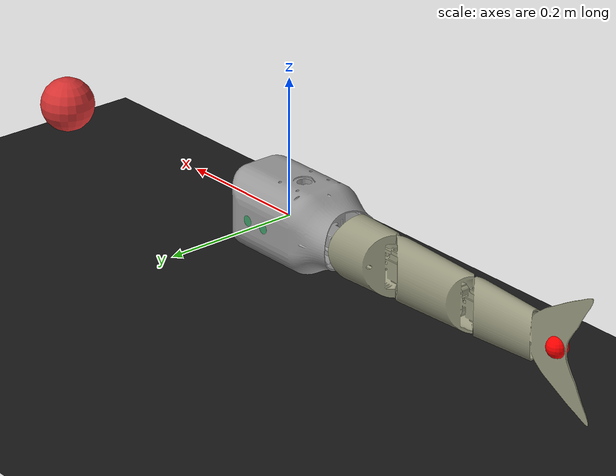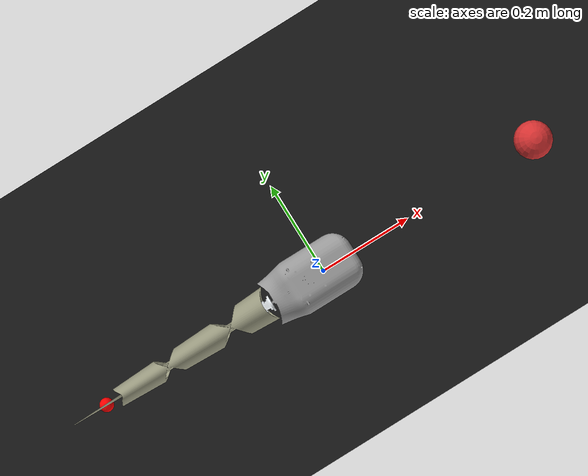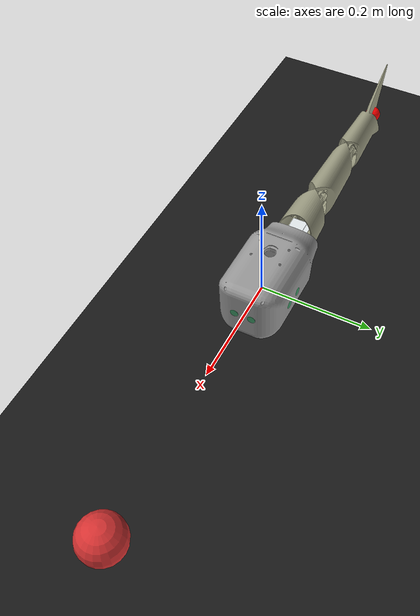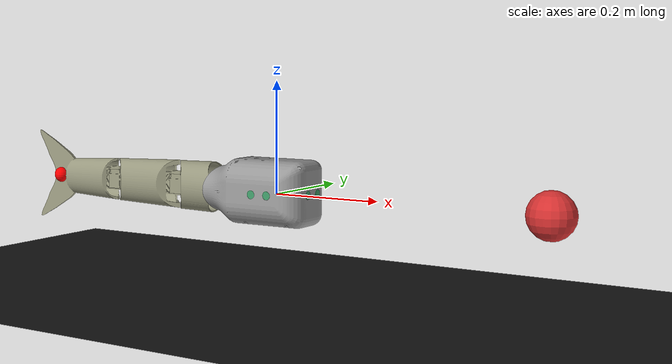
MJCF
<mujoco model="phy3">
  <compiler angle="radian" meshdir="meshes" autolimits="true" />
  <option timestep="0.002" gravity="0 0 0" wind="0 0 0" integrator="implicitfast" density="1000" viscosity="2e-3" />
  <visual>
    <global realtime="1" />
    <quality shadowsize="16384" numslices="28" offsamples="4" />
    <headlight diffuse=".8 .8 .8" specular="0.5 0.5 0.5" active="1" />
    <rgba fog=".2 0 .2 1" haze=".1 .1 .1 .1" />
  </visual>
  <asset>
    <mesh name="base_link" file="base_link.STL" />
    <mesh name="Link_1" file="Link_1.STL" />
    <mesh name="Link_2" file="Link_2.STL" />
    <mesh name="Link_3" file="Link_3.STL" />
    <mesh name="Link_4" file="Link_4.STL" />
    <mesh name="mag_left" file="mag_left.STL" />
    <mesh name="mag_forward" file="mag_forward.STL" />
    <mesh name="mag_right" file="mag_right.STL" />
    <texture name="plane" type="2d" builtin="flat" rgb1=".1 .1 .1" rgb2=".9 .9 .9" width="512" height="512" mark="cross" markrgb=".8 .8 .8" />
    <material name="plane" reflectance="0.3" texture="plane" texrepeat="1 1" texuniform="true" />
    <material name="box" rgba="0 0.5 0 1" emission="0" />
  </asset>
  <worldbody>
    <geom name="floor" pos="0 0 -.2" size="0 0 .25" type="plane" material="plane" condim="3" />
    <light directional="true" ambient=".3 .3 .3" pos="30 30 30" dir="0 -2 -1" diffuse=".5 .5 .5" specular=".5 .5 .5" />
    <body name="base_link" pos="0 0 0">
      <freejoint />
      <inertial pos="-0.01225 -0.00079323 -0.0043885" quat="1 0 0 0" mass="2.5" diaginertia="5.4394e-02 7.3252e-02 8.6248e-02" />
      <geom type="mesh" rgba=".6 .6 .6 1" mesh="base_link" />
      <body name="Link_1" pos="-0.127952 -0.000369697 0.00373371">
        <inertial pos="-0.016678 -0.0018477 1.4282e-06" quat="-0.085072 0.702028 0.085056 0.701915" mass=".8" diaginertia="1.6598e-04 1.54045e-04 8.48987e-05" />
        <joint name="Joint_1" pos="0 0 0" axis="1 0 0" damping="0.20" />
        <geom type="mesh" rgba="0.89804 0.91765 0.92941 1" mesh="Link_1" />
        <body name="Link_2" pos="-0.0146023 0.00135933 -0.00034031">
          <inertial pos="-0.050734 0.0011164 -0.0010549" quat="0.535197 0.752348 0.086355 -0.374272" mass="1.2" diaginertia="8.85962e-04 8.62711e-04 8.30557e-04" />
          <joint name="Joint_2" pos="0 0 0" axis="0 -1 0" damping="0.30" />
          <geom type="mesh" rgba="0.6 0.6 0.5 1" mesh="Link_2" />
          <body name="Link_3" pos="-0.073097 0.000840727 0.00123982">
            <inertial pos="-0.094957 -8.7181e-07 -0.00070345" quat="0.510757 0.48902 0.488988 0.510762" mass=".8" diaginertia="0.0033994 0.00265831 0.00117139" />
            <joint name="Joint_3" pos="0 0 0" axis="0 0 -1" damping="0.30" />
            <geom type="mesh" rgba="0.6 0.6 0.5 1" mesh="Link_3" />
            <body name="Link_4" pos="-0.1488 0 0.0004">
              <inertial pos="-0.073226 -2.4617e-06 0.00049893" quat="0.570607 0.41761 0.417618 0.570618" mass="1.2" diaginertia="0.002016 0.00117379 0.00106561" />
              <joint name="Joint_4" pos="0 0 0" axis="0 0 -1" damping="0.25" />
              <geom type="mesh" rgba="0.6 0.6 0.5 1" mesh="Link_4" />
              <site name="ee" pos="-0.15 0 0" size="0.015" rgba="1 0 0 1" />
              <geom name="Link_4_fluid" type="ellipsoid" mesh="Link_4" fitscale="0.90" fluidshape="ellipsoid" fluidcoef="0.50 0.15 1.20 0.10 0.10" rgba="0 0 0 0" contype="0" conaffinity="0" group="3" />
            </body>
            <geom name="Link_3_fluid" type="ellipsoid" mesh="Link_3" fitscale="0.90" fluidshape="ellipsoid" fluidcoef="0.50 0.15 1.20 0.10 0.10" rgba="0 0 0 0" contype="0" conaffinity="0" group="3" />
          </body>
          <geom name="Link_2_fluid" type="ellipsoid" mesh="Link_2" fitscale="0.90" fluidshape="ellipsoid" fluidcoef="0.50 0.15 1.20 0.10 0.10" rgba="0 0 0 0" contype="0" conaffinity="0" group="3" />
        </body>
        <geom name="Link_1_fluid" type="ellipsoid" mesh="Link_1" fitscale="0.90" fluidshape="ellipsoid" fluidcoef="0.50 0.15 1.20 0.10 0.10" rgba="0 0 0 0" contype="0" conaffinity="0" group="3" />
      </body>
      <body name="mag_forward" pos="0.059 0 0.004">
        <inertial pos="0.065101 -1.9727E-05 0.0049" mass="0.041049" />
        <geom type="mesh" rgba="0.24 0.6 0.4 1" mesh="mag_forward" />
      </body>
      <body name="mag_left" pos="0 0.045 0.004">
        <inertial pos="4.7617E-05 0.052534 0.0049" mass="0.041049" />
        <geom type="mesh" rgba="0.24 0.6 0.4 1" mesh="mag_left" />
      </body>
      <body name="mag_right" pos="0 -0.045 0.004">
        <inertial pos="4.7661E-05 -0.052573 0.0048999" mass="0.041049" />
        <geom type="mesh" rgba="0.24 0.6 0.4 1" mesh="mag_right" />
      </body>
      <site name="head_proxy" pos="0.058 0 0.005" size="0.012" rgba="0 0.6 1 1" />
    </body>
    <body name="ball_body" pos="0.50 0.00 0.00">
      <freejoint name="ball_freejoint" />
      <inertial pos="0 0 0" mass="0.05" diaginertia="3.2e-5 3.2e-5 3.2e-5" />
      <geom name="ball_geom" type="sphere" size="0.04" rgba="0.85 0.20 0.20 1" contype="1" conaffinity="1" condim="3" friction="0.5 0.05 0.001" />
      <site name="ball_site" pos="0 0 0" size="0.015" rgba="1 0.1 0.1 1" />
    </body>
    <camera name="grasp_side" pos="0.55 -0.95 0.35" xyaxes="1 0 0 0 0.35 0.94" />
    <camera name="grasp_top" pos="0.05 0.00 0.90" xyaxes="1 0 0 0 1 0" />
  </worldbody>
  <actuator>
    <adhesion name="forward" body="mag_forward" ctrlrange="0 1" gain="100" />
    <adhesion name="left" body="mag_left" ctrlrange="0 1" gain="100" />
    <adhesion name="right" body="mag_right" ctrlrange="0 1" gain="100" />
    <position name="j1" joint="Joint_1" ctrlrange="-1.57 1.57" ctrllimited="true" kp="10" />
    <position name="j2" joint="Joint_2" ctrlrange="-1.57 1.57" ctrllimited="true" kp="10" />
    <position name="j3" joint="Joint_3" ctrlrange="-1.57 1.57" ctrllimited="true" kp="10" />
    <position name="j4" joint="Joint_4" ctrlrange="-1.57 1.57" ctrllimited="true" kp="10" />
  </actuator>
</mujoco>
